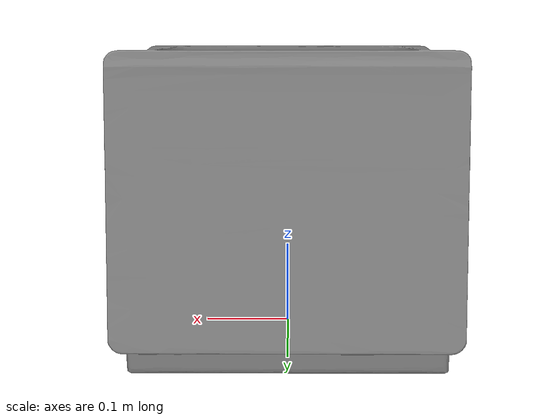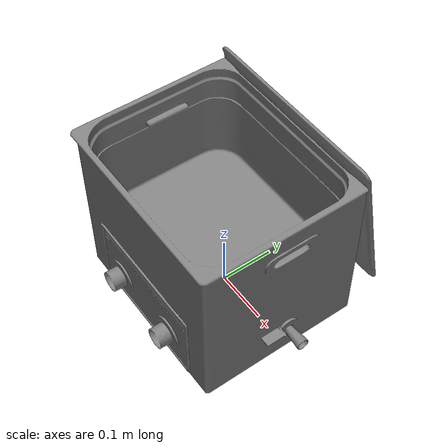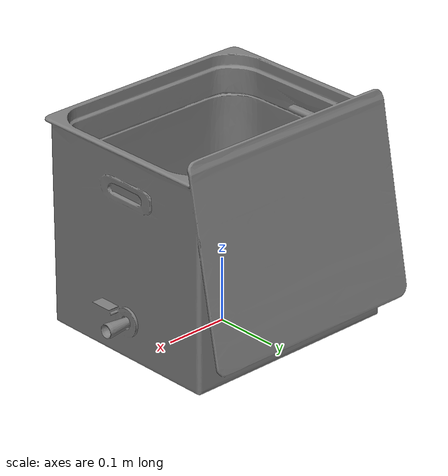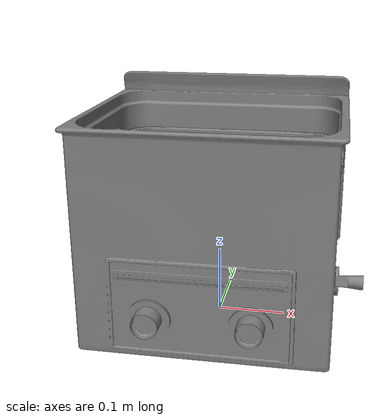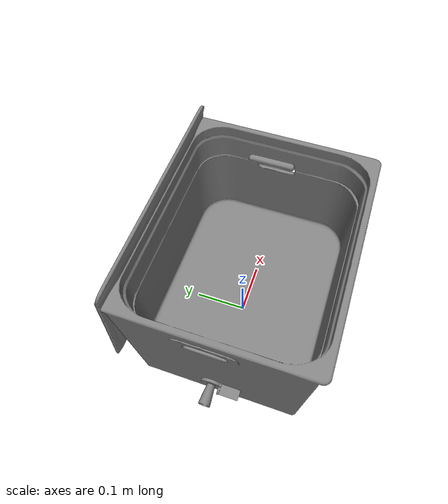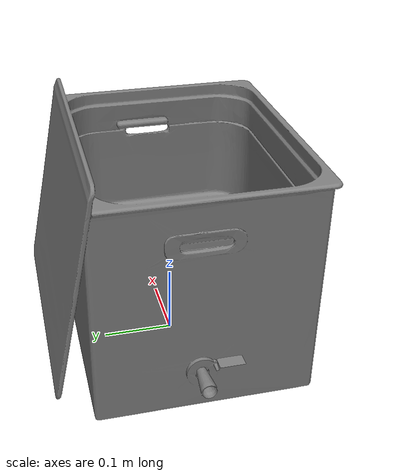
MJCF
<mujoco model="Cleaner">

  <compiler angle="radian" meshdir="../../assets" />

  <option gravity="0 0 -9.81" />

  <asset>

    <mesh name="cleaner_mesh" file="Cleaner/base.obj" scale="0.240000 0.240000 0.240000" />
  </asset>

  <worldbody>
    <body name="cleaner" quat="0.7071 0.7071 0 0">

      <geom name="cleaner_visual" type="mesh" mesh="cleaner_mesh" contype="0" conaffinity="0" />

      <geom name="box_1" type="box" density="7500" size="0.180000 0.068000 0.151200" pos="-0.000000 0.068000 0.016000" contype="1" conaffinity="1" friction="1.0 0.3 0.001" rgba="0 0 0 0" />
      <geom name="box_2" type="box" density="7500" size="0.180000 0.092000 0.008000" pos="0.000000 0.228000 0.160000" contype="1" conaffinity="1" friction="1.0 0.3 0.001" rgba="0 0 0 0" />
      <geom name="box_3" type="box" density="7500" size="0.180000 0.092000 0.008000" pos="0.000000 0.228000 -0.144000" contype="1" conaffinity="1" friction="1.0 0.3 0.001" rgba="0 0 0 0" />
      <geom name="box_4" type="box" density="7500" size="0.008000 0.092000 0.144000" pos="0.176000 0.228000 0.012000" contype="1" conaffinity="1" friction="1.0 0.3 0.001" rgba="0 0 0 0" />
      <geom name="box_5" type="box" density="7500" size="0.008000 0.092000 0.144000" pos="-0.176000 0.228000 0.012000" contype="1" conaffinity="1" friction="1.0 0.3 0.001" rgba="0 0 0 0" />

    </body>
  </worldbody>
</mujoco>
